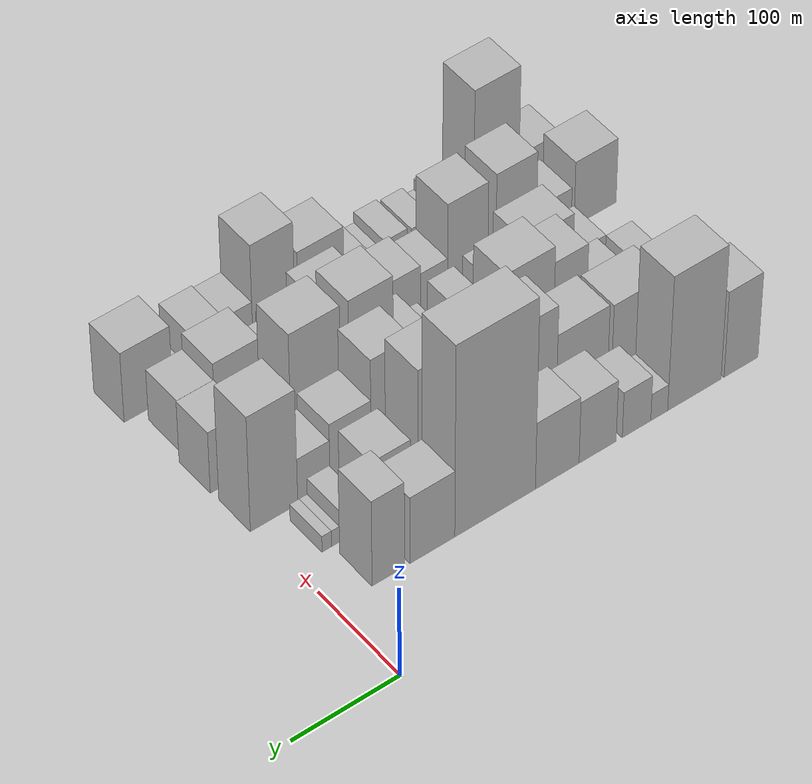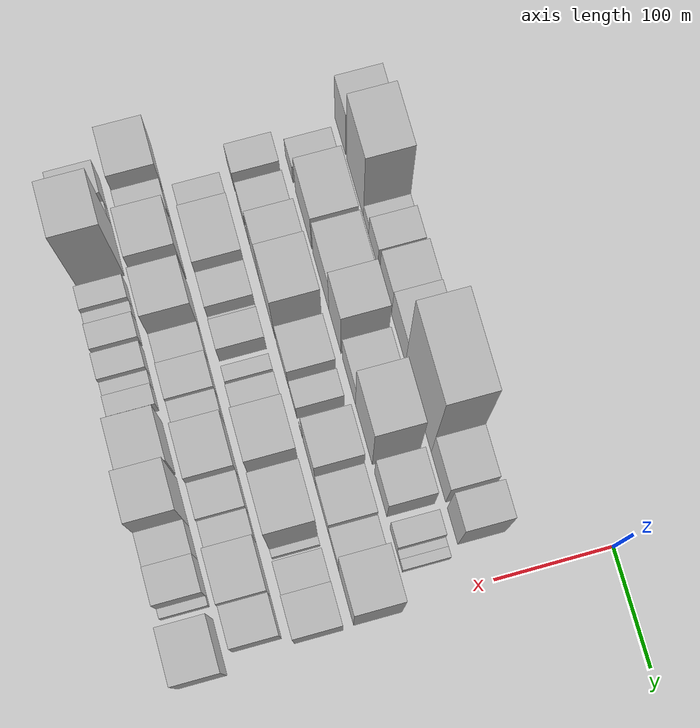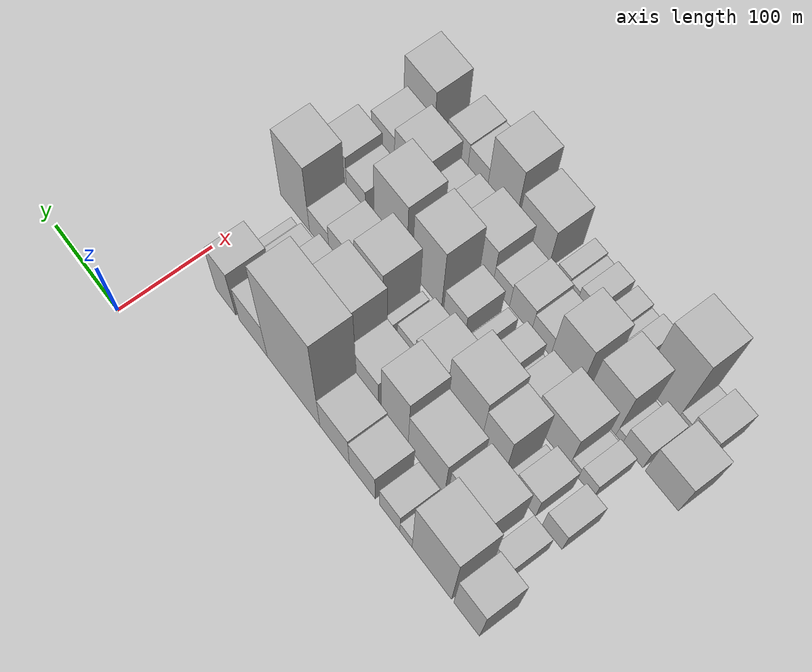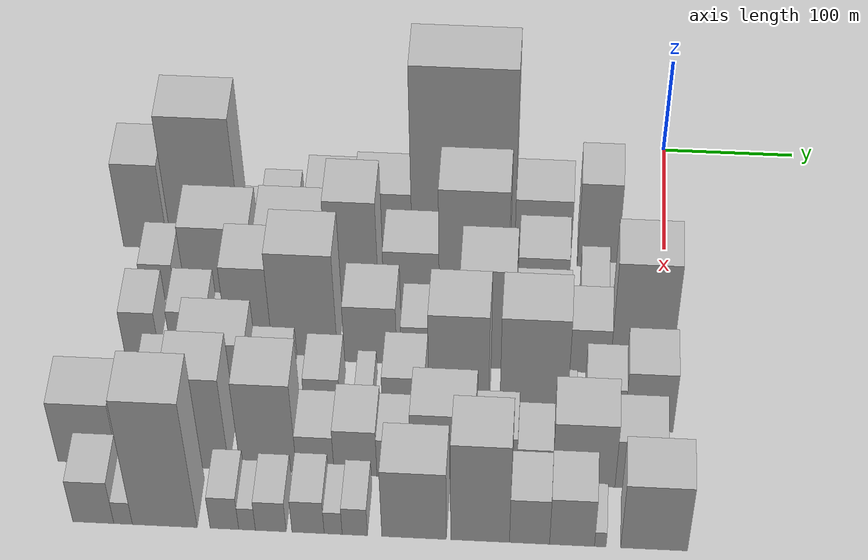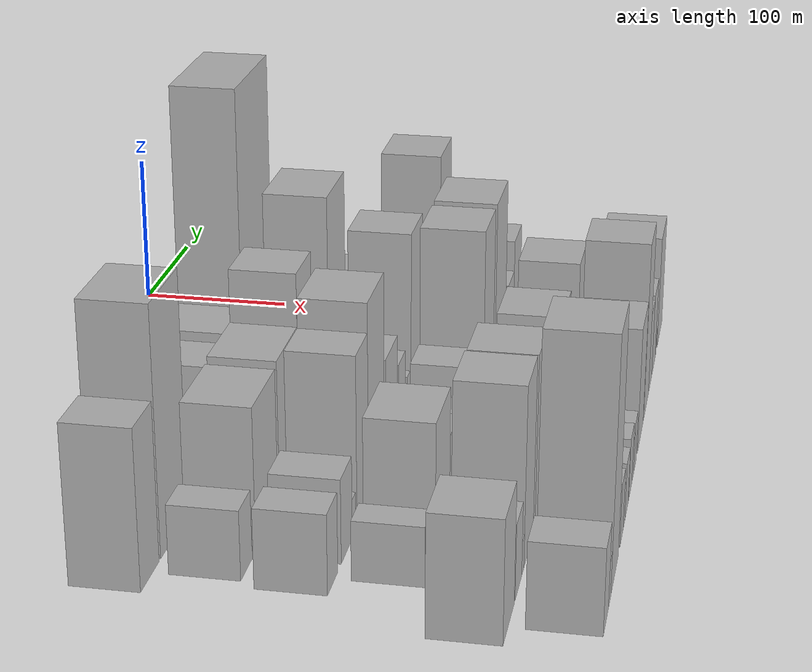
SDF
<sdf version="1.6">
 <world name="default">
  <model name="building_12">
   <static>1</static>
   <pose>100.0000 -392.8973 0 0.000000 0.000000 0.000000</pose>
   <link name="link">
    <pose>0 0 48.00 0 0 0</pose>
    <collision name="collision"><geometry><box><size>40.0000 34.0896 96.0000</size></box></geometry></collision>
    <visual name="visual">
     <cast_shadows>0</cast_shadows>
     <geometry><box><size>40.0000 34.0896 96.0000</size></box></geometry>
     <material>
      <script>
       <uri>model://HANNAS_wall/materials/scripts</uri>
       <uri>model://HANNAS_wall/materials/textures</uri>
       <name>vrc/HANNAS_wall</name>
      </script>
     </material>
    </visual>
   </link>
  </model>
  <model name="building_13">
   <static>1</static>
   <pose>100.0000 -346.2073 0 0.000000 0.000000 0.000000</pose>
   <link name="link">
    <pose>0 0 75.00 0 0 0</pose>
    <collision name="collision"><geometry><box><size>40.0000 53.2903 150.0000</size></box></geometry></collision>
    <visual name="visual">
     <cast_shadows>0</cast_shadows>
     <geometry><box><size>40.0000 53.2903 150.0000</size></box></geometry>
     <material>
      <script>
       <uri>model://HANNAS_wall/materials/scripts</uri>
       <uri>model://HANNAS_wall/materials/textures</uri>
       <name>vrc/HANNAS_wall</name>
      </script>
     </material>
    </visual>
   </link>
  </model>
  <model name="building_14">
   <static>1</static>
   <pose>100.0000 -311.1829 0 0.000000 0.000000 0.000000</pose>
   <link name="link">
    <pose>0 0 15.00 0 0 0</pose>
    <collision name="collision"><geometry><box><size>40.0000 16.7586 30.0000</size></box></geometry></collision>
    <visual name="visual">
     <cast_shadows>0</cast_shadows>
     <geometry><box><size>40.0000 16.7586 30.0000</size></box></geometry>
     <material>
      <script>
       <uri>model://HANNAS_wall/materials/scripts</uri>
       <uri>model://HANNAS_wall/materials/textures</uri>
       <name>vrc/HANNAS_wall</name>
      </script>
     </material>
    </visual>
   </link>
  </model>
  <model name="building_15">
   <static>1</static>
   <pose>100.0000 -288.7752 0 0.000000 0.000000 0.000000</pose>
   <link name="link">
    <pose>0 0 25.50 0 0 0</pose>
    <collision name="collision"><geometry><box><size>40.0000 28.0567 51.0000</size></box></geometry></collision>
    <visual name="visual">
     <cast_shadows>0</cast_shadows>
     <geometry><box><size>40.0000 28.0567 51.0000</size></box></geometry>
     <material>
      <script>
       <uri>model://HANNAS_wall/materials/scripts</uri>
       <uri>model://HANNAS_wall/materials/textures</uri>
       <name>vrc/HANNAS_wall</name>
      </script>
     </material>
    </visual>
   </link>
  </model>
  <model name="building_16">
   <static>1</static>
   <pose>100.0000 -250.5899 0 0.000000 0.000000 0.000000</pose>
   <link name="link">
    <pose>0 0 34.50 0 0 0</pose>
    <collision name="collision"><geometry><box><size>40.0000 36.3140 69.0000</size></box></geometry></collision>
    <visual name="visual">
     <cast_shadows>0</cast_shadows>
     <geometry><box><size>40.0000 36.3140 69.0000</size></box></geometry>
     <material>
      <script>
       <uri>model://HANNAS_wall/materials/scripts</uri>
       <uri>model://HANNAS_wall/materials/textures</uri>
       <name>vrc/HANNAS_wall</name>
      </script>
     </material>
    </visual>
   </link>
  </model>
  <model name="building_17">
   <static>1</static>
   <pose>100.0000 -211.2901 0 0.000000 0.000000 0.000000</pose>
   <link name="link">
    <pose>0 0 37.50 0 0 0</pose>
    <collision name="collision"><geometry><box><size>40.0000 42.2855 75.0000</size></box></geometry></collision>
    <visual name="visual">
     <cast_shadows>0</cast_shadows>
     <geometry><box><size>40.0000 42.2855 75.0000</size></box></geometry>
     <material>
      <script>
       <uri>model://HANNAS_wall/materials/scripts</uri>
       <uri>model://HANNAS_wall/materials/textures</uri>
       <name>vrc/HANNAS_wall</name>
      </script>
     </material>
    </visual>
   </link>
  </model>
  <model name="building_18">
   <static>1</static>
   <pose>100.0000 -151.5598 0 0.000000 0.000000 0.000000</pose>
   <link name="link">
    <pose>0 0 106.50 0 0 0</pose>
    <collision name="collision"><geometry><box><size>40.0000 77.1752 213.0000</size></box></geometry></collision>
    <visual name="visual">
     <cast_shadows>0</cast_shadows>
     <geometry><box><size>40.0000 77.1752 213.0000</size></box></geometry>
     <material>
      <script>
       <uri>model://HANNAS_wall/materials/scripts</uri>
       <uri>model://HANNAS_wall/materials/textures</uri>
       <name>vrc/HANNAS_wall</name>
      </script>
     </material>
    </visual>
   </link>
  </model>
  <model name="building_19">
   <static>1</static>
   <pose>100.0000 -91.7813 0 0.000000 0.000000 0.000000</pose>
   <link name="link">
    <pose>0 0 37.50 0 0 0</pose>
    <collision name="collision"><geometry><box><size>40.0000 42.3817 75.0000</size></box></geometry></collision>
    <visual name="visual">
     <cast_shadows>0</cast_shadows>
     <geometry><box><size>40.0000 42.3817 75.0000</size></box></geometry>
     <material>
      <script>
       <uri>model://HANNAS_wall/materials/scripts</uri>
       <uri>model://HANNAS_wall/materials/textures</uri>
       <name>vrc/HANNAS_wall</name>
      </script>
     </material>
    </visual>
   </link>
  </model>
  <model name="building_20">
   <static>1</static>
   <pose>100.0000 -50.3472 0 0.000000 0.000000 0.000000</pose>
   <link name="link">
    <pose>0 0 48.00 0 0 0</pose>
    <collision name="collision"><geometry><box><size>40.0000 30.4866 96.0000</size></box></geometry></collision>
    <visual name="visual">
     <cast_shadows>0</cast_shadows>
     <geometry><box><size>40.0000 30.4866 96.0000</size></box></geometry>
     <material>
      <script>
       <uri>model://HANNAS_wall/materials/scripts</uri>
       <uri>model://HANNAS_wall/materials/textures</uri>
       <name>vrc/HANNAS_wall</name>
      </script>
     </material>
    </visual>
   </link>
  </model>
  <model name="building_56">
   <static>1</static>
   <pose>149.0000 -376.0090 0 0.000000 0.000000 0.000000</pose>
   <link name="link">
    <pose>0 0 21.00 0 0 0</pose>
    <collision name="collision"><geometry><box><size>40.0000 24.7349 42.0000</size></box></geometry></collision>
    <visual name="visual">
     <cast_shadows>0</cast_shadows>
     <geometry><box><size>40.0000 24.7349 42.0000</size></box></geometry>
     <material>
      <script>
       <uri>model://HANNAS_wall/materials/scripts</uri>
       <uri>model://HANNAS_wall/materials/textures</uri>
       <name>vrc/HANNAS_wall</name>
      </script>
     </material>
    </visual>
   </link>
  </model>
  <model name="building_57">
   <static>1</static>
   <pose>149.0000 -329.7334 0 0.000000 0.000000 0.000000</pose>
   <link name="link">
    <pose>0 0 43.50 0 0 0</pose>
    <collision name="collision"><geometry><box><size>40.0000 51.8163 87.0000</size></box></geometry></collision>
    <visual name="visual">
     <cast_shadows>0</cast_shadows>
     <geometry><box><size>40.0000 51.8163 87.0000</size></box></geometry>
     <material>
      <script>
       <uri>model://HANNAS_wall/materials/scripts</uri>
       <uri>model://HANNAS_wall/materials/textures</uri>
       <name>vrc/HANNAS_wall</name>
      </script>
     </material>
    </visual>
   </link>
  </model>
  <model name="building_58">
   <static>1</static>
   <pose>149.0000 -274.5626 0 0.000000 0.000000 0.000000</pose>
   <link name="link">
    <pose>0 0 45.00 0 0 0</pose>
    <collision name="collision"><geometry><box><size>40.0000 50.5255 90.0000</size></box></geometry></collision>
    <visual name="visual">
     <cast_shadows>0</cast_shadows>
     <geometry><box><size>40.0000 50.5255 90.0000</size></box></geometry>
     <material>
      <script>
       <uri>model://HANNAS_wall/materials/scripts</uri>
       <uri>model://HANNAS_wall/materials/textures</uri>
       <name>vrc/HANNAS_wall</name>
      </script>
     </material>
    </visual>
   </link>
  </model>
  <model name="building_59">
   <static>1</static>
   <pose>149.0000 -230.4755 0 0.000000 0.000000 0.000000</pose>
   <link name="link">
    <pose>0 0 61.50 0 0 0</pose>
    <collision name="collision"><geometry><box><size>40.0000 37.6487 123.0000</size></box></geometry></collision>
    <visual name="visual">
     <cast_shadows>0</cast_shadows>
     <geometry><box><size>40.0000 37.6487 123.0000</size></box></geometry>
     <material>
      <script>
       <uri>model://HANNAS_wall/materials/scripts</uri>
       <uri>model://HANNAS_wall/materials/textures</uri>
       <name>vrc/HANNAS_wall</name>
      </script>
     </material>
    </visual>
   </link>
  </model>
  <model name="building_60">
   <static>1</static>
   <pose>149.0000 -187.1930 0 0.000000 0.000000 0.000000</pose>
   <link name="link">
    <pose>0 0 34.50 0 0 0</pose>
    <collision name="collision"><geometry><box><size>40.0000 40.9164 69.0000</size></box></geometry></collision>
    <visual name="visual">
     <cast_shadows>0</cast_shadows>
     <geometry><box><size>40.0000 40.9164 69.0000</size></box></geometry>
     <material>
      <script>
       <uri>model://HANNAS_wall/materials/scripts</uri>
       <uri>model://HANNAS_wall/materials/textures</uri>
       <name>vrc/HANNAS_wall</name>
      </script>
     </material>
    </visual>
   </link>
  </model>
  <model name="building_61">
   <static>1</static>
   <pose>149.0000 -141.3337 0 0.000000 0.000000 0.000000</pose>
   <link name="link">
    <pose>0 0 70.50 0 0 0</pose>
    <collision name="collision"><geometry><box><size>40.0000 50.8022 141.0000</size></box></geometry></collision>
    <visual name="visual">
     <cast_shadows>0</cast_shadows>
     <geometry><box><size>40.0000 50.8022 141.0000</size></box></geometry>
     <material>
      <script>
       <uri>model://HANNAS_wall/materials/scripts</uri>
       <uri>model://HANNAS_wall/materials/textures</uri>
       <name>vrc/HANNAS_wall</name>
      </script>
     </material>
    </visual>
   </link>
  </model>
  <model name="building_62">
   <static>1</static>
   <pose>149.0000 -90.3710 0 0.000000 0.000000 0.000000</pose>
   <link name="link">
    <pose>0 0 34.50 0 0 0</pose>
    <collision name="collision"><geometry><box><size>40.0000 37.1232 69.0000</size></box></geometry></collision>
    <visual name="visual">
     <cast_shadows>0</cast_shadows>
     <geometry><box><size>40.0000 37.1232 69.0000</size></box></geometry>
     <material>
      <script>
       <uri>model://HANNAS_wall/materials/scripts</uri>
       <uri>model://HANNAS_wall/materials/textures</uri>
       <name>vrc/HANNAS_wall</name>
      </script>
     </material>
    </visual>
   </link>
  </model>
  <model name="building_63">
   <static>1</static>
   <pose>149.0000 -52.3961 0 0.000000 0.000000 0.000000</pose>
   <link name="link">
    <pose>0 0 18.00 0 0 0</pose>
    <collision name="collision"><geometry><box><size>40.0000 20.8265 36.0000</size></box></geometry></collision>
    <visual name="visual">
     <cast_shadows>0</cast_shadows>
     <geometry><box><size>40.0000 20.8265 36.0000</size></box></geometry>
     <material>
      <script>
       <uri>model://HANNAS_wall/materials/scripts</uri>
       <uri>model://HANNAS_wall/materials/textures</uri>
       <name>vrc/HANNAS_wall</name>
      </script>
     </material>
    </visual>
   </link>
  </model>
  <model name="building_64">
   <static>1</static>
   <pose>149.0000 -38.1881 0 0.000000 0.000000 0.000000</pose>
   <link name="link">
    <pose>0 0 9.00 0 0 0</pose>
    <collision name="collision"><geometry><box><size>40.0000 7.5896 18.0000</size></box></geometry></collision>
    <visual name="visual">
     <cast_shadows>0</cast_shadows>
     <geometry><box><size>40.0000 7.5896 18.0000</size></box></geometry>
     <material>
      <script>
       <uri>model://HANNAS_wall/materials/scripts</uri>
       <uri>model://HANNAS_wall/materials/textures</uri>
       <name>vrc/HANNAS_wall</name>
      </script>
     </material>
    </visual>
   </link>
  </model>
  <model name="building_65">
   <static>1</static>
   <pose>149.0000 -29.9354 0 0.000000 0.000000 0.000000</pose>
   <link name="link">
    <pose>0 0 9.00 0 0 0</pose>
    <collision name="collision"><geometry><box><size>40.0000 8.9158 18.0000</size></box></geometry></collision>
    <visual name="visual">
     <cast_shadows>0</cast_shadows>
     <geometry><box><size>40.0000 8.9158 18.0000</size></box></geometry>
     <material>
      <script>
       <uri>model://HANNAS_wall/materials/scripts</uri>
       <uri>model://HANNAS_wall/materials/textures</uri>
       <name>vrc/HANNAS_wall</name>
      </script>
     </material>
    </visual>
   </link>
  </model>
  <model name="building_104">
   <static>1</static>
   <pose>198.0000 -382.3272 0 0.000000 0.000000 0.000000</pose>
   <link name="link">
    <pose>0 0 24.00 0 0 0</pose>
    <collision name="collision"><geometry><box><size>40.0000 25.7984 48.0000</size></box></geometry></collision>
    <visual name="visual">
     <cast_shadows>0</cast_shadows>
     <geometry><box><size>40.0000 25.7984 48.0000</size></box></geometry>
     <material>
      <script>
       <uri>model://HANNAS_wall/materials/scripts</uri>
       <uri>model://HANNAS_wall/materials/textures</uri>
       <name>vrc/HANNAS_wall</name>
      </script>
     </material>
    </visual>
   </link>
  </model>
  <model name="building_105">
   <static>1</static>
   <pose>198.0000 -345.8460 0 0.000000 0.000000 0.000000</pose>
   <link name="link">
    <pose>0 0 25.50 0 0 0</pose>
    <collision name="collision"><geometry><box><size>40.0000 29.1640 51.0000</size></box></geometry></collision>
    <visual name="visual">
     <cast_shadows>0</cast_shadows>
     <geometry><box><size>40.0000 29.1640 51.0000</size></box></geometry>
     <material>
      <script>
       <uri>model://HANNAS_wall/materials/scripts</uri>
       <uri>model://HANNAS_wall/materials/textures</uri>
       <name>vrc/HANNAS_wall</name>
      </script>
     </material>
    </visual>
   </link>
  </model>
  <model name="building_106">
   <static>1</static>
   <pose>198.0000 -326.2091 0 0.000000 0.000000 0.000000</pose>
   <link name="link">
    <pose>0 0 12.00 0 0 0</pose>
    <collision name="collision"><geometry><box><size>40.0000 10.1097 24.0000</size></box></geometry></collision>
    <visual name="visual">
     <cast_shadows>0</cast_shadows>
     <geometry><box><size>40.0000 10.1097 24.0000</size></box></geometry>
     <material>
      <script>
       <uri>model://HANNAS_wall/materials/scripts</uri>
       <uri>model://HANNAS_wall/materials/textures</uri>
       <name>vrc/HANNAS_wall</name>
      </script>
     </material>
    </visual>
   </link>
  </model>
  <model name="building_107">
   <static>1</static>
   <pose>198.0000 -301.8444 0 0.000000 0.000000 0.000000</pose>
   <link name="link">
    <pose>0 0 52.50 0 0 0</pose>
    <collision name="collision"><geometry><box><size>40.0000 32.6197 105.0000</size></box></geometry></collision>
    <visual name="visual">
     <cast_shadows>0</cast_shadows>
     <geometry><box><size>40.0000 32.6197 105.0000</size></box></geometry>
     <material>
      <script>
       <uri>model://HANNAS_wall/materials/scripts</uri>
       <uri>model://HANNAS_wall/materials/textures</uri>
       <name>vrc/HANNAS_wall</name>
      </script>
     </material>
    </visual>
   </link>
  </model>
  <model name="building_108">
   <static>1</static>
   <pose>198.0000 -261.7759 0 0.000000 0.000000 0.000000</pose>
   <link name="link">
    <pose>0 0 61.50 0 0 0</pose>
    <collision name="collision"><geometry><box><size>40.0000 47.5175 123.0000</size></box></geometry></collision>
    <visual name="visual">
     <cast_shadows>0</cast_shadows>
     <geometry><box><size>40.0000 47.5175 123.0000</size></box></geometry>
     <material>
      <script>
       <uri>model://HANNAS_wall/materials/scripts</uri>
       <uri>model://HANNAS_wall/materials/textures</uri>
       <name>vrc/HANNAS_wall</name>
      </script>
     </material>
    </visual>
   </link>
  </model>
  <model name="building_109">
   <static>1</static>
   <pose>198.0000 -213.8869 0 0.000000 0.000000 0.000000</pose>
   <link name="link">
    <pose>0 0 33.00 0 0 0</pose>
    <collision name="collision"><geometry><box><size>40.0000 38.2605 66.0000</size></box></geometry></collision>
    <visual name="visual">
     <cast_shadows>0</cast_shadows>
     <geometry><box><size>40.0000 38.2605 66.0000</size></box></geometry>
     <material>
      <script>
       <uri>model://HANNAS_wall/materials/scripts</uri>
       <uri>model://HANNAS_wall/materials/textures</uri>
       <name>vrc/HANNAS_wall</name>
      </script>
     </material>
    </visual>
   </link>
  </model>
  <model name="building_110">
   <static>1</static>
   <pose>198.0000 -180.2762 0 0.000000 0.000000 0.000000</pose>
   <link name="link">
    <pose>0 0 22.50 0 0 0</pose>
    <collision name="collision"><geometry><box><size>40.0000 22.9608 45.0000</size></box></geometry></collision>
    <visual name="visual">
     <cast_shadows>0</cast_shadows>
     <geometry><box><size>40.0000 22.9608 45.0000</size></box></geometry>
     <material>
      <script>
       <uri>model://HANNAS_wall/materials/scripts</uri>
       <uri>model://HANNAS_wall/materials/textures</uri>
       <name>vrc/HANNAS_wall</name>
      </script>
     </material>
    </visual>
   </link>
  </model>
  <model name="building_111">
   <static>1</static>
   <pose>198.0000 -156.7101 0 0.000000 0.000000 0.000000</pose>
   <link name="link">
    <pose>0 0 12.00 0 0 0</pose>
    <collision name="collision"><geometry><box><size>40.0000 10.1714 24.0000</size></box></geometry></collision>
    <visual name="visual">
     <cast_shadows>0</cast_shadows>
     <geometry><box><size>40.0000 10.1714 24.0000</size></box></geometry>
     <material>
      <script>
       <uri>model://HANNAS_wall/materials/scripts</uri>
       <uri>model://HANNAS_wall/materials/textures</uri>
       <name>vrc/HANNAS_wall</name>
      </script>
     </material>
    </visual>
   </link>
  </model>
  <model name="building_112">
   <static>1</static>
   <pose>198.0000 -128.9068 0 0.000000 0.000000 0.000000</pose>
   <link name="link">
    <pose>0 0 57.00 0 0 0</pose>
    <collision name="collision"><geometry><box><size>40.0000 39.4353 114.0000</size></box></geometry></collision>
    <visual name="visual">
     <cast_shadows>0</cast_shadows>
     <geometry><box><size>40.0000 39.4353 114.0000</size></box></geometry>
     <material>
      <script>
       <uri>model://HANNAS_wall/materials/scripts</uri>
       <uri>model://HANNAS_wall/materials/textures</uri>
       <name>vrc/HANNAS_wall</name>
      </script>
     </material>
    </visual>
   </link>
  </model>
  <model name="building_113">
   <static>1</static>
   <pose>198.0000 -89.5917 0 0.000000 0.000000 0.000000</pose>
   <link name="link">
    <pose>0 0 34.50 0 0 0</pose>
    <collision name="collision"><geometry><box><size>40.0000 39.1950 69.0000</size></box></geometry></collision>
    <visual name="visual">
     <cast_shadows>0</cast_shadows>
     <geometry><box><size>40.0000 39.1950 69.0000</size></box></geometry>
     <material>
      <script>
       <uri>model://HANNAS_wall/materials/scripts</uri>
       <uri>model://HANNAS_wall/materials/textures</uri>
       <name>vrc/HANNAS_wall</name>
      </script>
     </material>
    </visual>
   </link>
  </model>
  <model name="building_114">
   <static>1</static>
   <pose>198.0000 -54.7384 0 0.000000 0.000000 0.000000</pose>
   <link name="link">
    <pose>0 0 25.50 0 0 0</pose>
    <collision name="collision"><geometry><box><size>40.0000 30.5116 51.0000</size></box></geometry></collision>
    <visual name="visual">
     <cast_shadows>0</cast_shadows>
     <geometry><box><size>40.0000 30.5116 51.0000</size></box></geometry>
     <material>
      <script>
       <uri>model://HANNAS_wall/materials/scripts</uri>
       <uri>model://HANNAS_wall/materials/textures</uri>
       <name>vrc/HANNAS_wall</name>
      </script>
     </material>
    </visual>
   </link>
  </model>
  <model name="building_115">
   <static>1</static>
   <pose>198.0000 -17.2766 0 0.000000 0.000000 0.000000</pose>
   <link name="link">
    <pose>0 0 64.50 0 0 0</pose>
    <collision name="collision"><geometry><box><size>40.0000 44.4120 129.0000</size></box></geometry></collision>
    <visual name="visual">
     <cast_shadows>0</cast_shadows>
     <geometry><box><size>40.0000 44.4120 129.0000</size></box></geometry>
     <material>
      <script>
       <uri>model://HANNAS_wall/materials/scripts</uri>
       <uri>model://HANNAS_wall/materials/textures</uri>
       <name>vrc/HANNAS_wall</name>
      </script>
     </material>
    </visual>
   </link>
  </model>
  <model name="building_149">
   <static>1</static>
   <pose>247.0000 -366.7356 0 0.000000 0.000000 0.000000</pose>
   <link name="link">
    <pose>0 0 18.00 0 0 0</pose>
    <collision name="collision"><geometry><box><size>40.0000 20.9279 36.0000</size></box></geometry></collision>
    <visual name="visual">
     <cast_shadows>0</cast_shadows>
     <geometry><box><size>40.0000 20.9279 36.0000</size></box></geometry>
     <material>
      <script>
       <uri>model://HANNAS_wall/materials/scripts</uri>
       <uri>model://HANNAS_wall/materials/textures</uri>
       <name>vrc/HANNAS_wall</name>
      </script>
     </material>
    </visual>
   </link>
  </model>
  <model name="building_150">
   <static>1</static>
   <pose>247.0000 -350.3217 0 0.000000 0.000000 0.000000</pose>
   <link name="link">
    <pose>0 0 13.50 0 0 0</pose>
    <collision name="collision"><geometry><box><size>40.0000 11.8999 27.0000</size></box></geometry></collision>
    <visual name="visual">
     <cast_shadows>0</cast_shadows>
     <geometry><box><size>40.0000 11.8999 27.0000</size></box></geometry>
     <material>
      <script>
       <uri>model://HANNAS_wall/materials/scripts</uri>
       <uri>model://HANNAS_wall/materials/textures</uri>
       <name>vrc/HANNAS_wall</name>
      </script>
     </material>
    </visual>
   </link>
  </model>
  <model name="building_151">
   <static>1</static>
   <pose>247.0000 -320.2752 0 0.000000 0.000000 0.000000</pose>
   <link name="link">
    <pose>0 0 40.50 0 0 0</pose>
    <collision name="collision"><geometry><box><size>40.0000 48.1930 81.0000</size></box></geometry></collision>
    <visual name="visual">
     <cast_shadows>0</cast_shadows>
     <geometry><box><size>40.0000 48.1930 81.0000</size></box></geometry>
     <material>
      <script>
       <uri>model://HANNAS_wall/materials/scripts</uri>
       <uri>model://HANNAS_wall/materials/textures</uri>
       <name>vrc/HANNAS_wall</name>
      </script>
     </material>
    </visual>
   </link>
  </model>
  <model name="building_152">
   <static>1</static>
   <pose>247.0000 -281.2591 0 0.000000 0.000000 0.000000</pose>
   <link name="link">
    <pose>0 0 25.50 0 0 0</pose>
    <collision name="collision"><geometry><box><size>40.0000 29.8394 51.0000</size></box></geometry></collision>
    <visual name="visual">
     <cast_shadows>0</cast_shadows>
     <geometry><box><size>40.0000 29.8394 51.0000</size></box></geometry>
     <material>
      <script>
       <uri>model://HANNAS_wall/materials/scripts</uri>
       <uri>model://HANNAS_wall/materials/textures</uri>
       <name>vrc/HANNAS_wall</name>
      </script>
     </material>
    </visual>
   </link>
  </model>
  <model name="building_153">
   <static>1</static>
   <pose>247.0000 -261.9431 0 0.000000 0.000000 0.000000</pose>
   <link name="link">
    <pose>0 0 9.00 0 0 0</pose>
    <collision name="collision"><geometry><box><size>40.0000 8.7926 18.0000</size></box></geometry></collision>
    <visual name="visual">
     <cast_shadows>0</cast_shadows>
     <geometry><box><size>40.0000 8.7926 18.0000</size></box></geometry>
     <material>
      <script>
       <uri>model://HANNAS_wall/materials/scripts</uri>
       <uri>model://HANNAS_wall/materials/textures</uri>
       <name>vrc/HANNAS_wall</name>
      </script>
     </material>
    </visual>
   </link>
  </model>
  <model name="building_154">
   <static>1</static>
   <pose>247.0000 -244.6733 0 0.000000 0.000000 0.000000</pose>
   <link name="link">
    <pose>0 0 22.50 0 0 0</pose>
    <collision name="collision"><geometry><box><size>40.0000 25.7469 45.0000</size></box></geometry></collision>
    <visual name="visual">
     <cast_shadows>0</cast_shadows>
     <geometry><box><size>40.0000 25.7469 45.0000</size></box></geometry>
     <material>
      <script>
       <uri>model://HANNAS_wall/materials/scripts</uri>
       <uri>model://HANNAS_wall/materials/textures</uri>
       <name>vrc/HANNAS_wall</name>
      </script>
     </material>
    </visual>
   </link>
  </model>
  <model name="building_155">
   <static>1</static>
   <pose>247.0000 -215.1373 0 0.000000 0.000000 0.000000</pose>
   <link name="link">
    <pose>0 0 13.50 0 0 0</pose>
    <collision name="collision"><geometry><box><size>40.0000 13.3252 27.0000</size></box></geometry></collision>
    <visual name="visual">
     <cast_shadows>0</cast_shadows>
     <geometry><box><size>40.0000 13.3252 27.0000</size></box></geometry>
     <material>
      <script>
       <uri>model://HANNAS_wall/materials/scripts</uri>
       <uri>model://HANNAS_wall/materials/textures</uri>
       <name>vrc/HANNAS_wall</name>
      </script>
     </material>
    </visual>
   </link>
  </model>
  <model name="building_156">
   <static>1</static>
   <pose>247.0000 -186.2793 0 0.000000 0.000000 0.000000</pose>
   <link name="link">
    <pose>0 0 25.50 0 0 0</pose>
    <collision name="collision"><geometry><box><size>40.0000 30.3909 51.0000</size></box></geometry></collision>
    <visual name="visual">
     <cast_shadows>0</cast_shadows>
     <geometry><box><size>40.0000 30.3909 51.0000</size></box></geometry>
     <material>
      <script>
       <uri>model://HANNAS_wall/materials/scripts</uri>
       <uri>model://HANNAS_wall/materials/textures</uri>
       <name>vrc/HANNAS_wall</name>
      </script>
     </material>
    </visual>
   </link>
  </model>
  <model name="building_157">
   <static>1</static>
   <pose>247.0000 -146.9115 0 0.000000 0.000000 0.000000</pose>
   <link name="link">
    <pose>0 0 63.00 0 0 0</pose>
    <collision name="collision"><geometry><box><size>40.0000 42.3447 126.0000</size></box></geometry></collision>
    <visual name="visual">
     <cast_shadows>0</cast_shadows>
     <geometry><box><size>40.0000 42.3447 126.0000</size></box></geometry>
     <material>
      <script>
       <uri>model://HANNAS_wall/materials/scripts</uri>
       <uri>model://HANNAS_wall/materials/textures</uri>
       <name>vrc/HANNAS_wall</name>
      </script>
     </material>
    </visual>
   </link>
  </model>
  <model name="building_158">
   <static>1</static>
   <pose>247.0000 -93.8946 0 0.000000 0.000000 0.000000</pose>
   <link name="link">
    <pose>0 0 63.00 0 0 0</pose>
    <collision name="collision"><geometry><box><size>40.0000 47.6892 126.0000</size></box></geometry></collision>
    <visual name="visual">
     <cast_shadows>0</cast_shadows>
     <geometry><box><size>40.0000 47.6892 126.0000</size></box></geometry>
     <material>
      <script>
       <uri>model://HANNAS_wall/materials/scripts</uri>
       <uri>model://HANNAS_wall/materials/textures</uri>
       <name>vrc/HANNAS_wall</name>
      </script>
     </material>
    </visual>
   </link>
  </model>
  <model name="building_159">
   <static>1</static>
   <pose>247.0000 -66.5783 0 0.000000 0.000000 0.000000</pose>
   <link name="link">
    <pose>0 0 7.50 0 0 0</pose>
    <collision name="collision"><geometry><box><size>40.0000 6.9434 15.0000</size></box></geometry></collision>
    <visual name="visual">
     <cast_shadows>0</cast_shadows>
     <geometry><box><size>40.0000 6.9434 15.0000</size></box></geometry>
     <material>
      <script>
       <uri>model://HANNAS_wall/materials/scripts</uri>
       <uri>model://HANNAS_wall/materials/textures</uri>
       <name>vrc/HANNAS_wall</name>
      </script>
     </material>
    </visual>
   </link>
  </model>
  <model name="building_160">
   <static>1</static>
   <pose>247.0000 -42.8499 0 0.000000 0.000000 0.000000</pose>
   <link name="link">
    <pose>0 0 24.00 0 0 0</pose>
    <collision name="collision"><geometry><box><size>40.0000 28.5135 48.0000</size></box></geometry></collision>
    <visual name="visual">
     <cast_shadows>0</cast_shadows>
     <geometry><box><size>40.0000 28.5135 48.0000</size></box></geometry>
     <material>
      <script>
       <uri>model://HANNAS_wall/materials/scripts</uri>
       <uri>model://HANNAS_wall/materials/textures</uri>
       <name>vrc/HANNAS_wall</name>
      </script>
     </material>
    </visual>
   </link>
  </model>
  <model name="building_161">
   <static>1</static>
   <pose>247.0000 -11.1434 0 0.000000 0.000000 0.000000</pose>
   <link name="link">
    <pose>0 0 34.50 0 0 0</pose>
    <collision name="collision"><geometry><box><size>40.0000 34.8994 69.0000</size></box></geometry></collision>
    <visual name="visual">
     <cast_shadows>0</cast_shadows>
     <geometry><box><size>40.0000 34.8994 69.0000</size></box></geometry>
     <material>
      <script>
       <uri>model://HANNAS_wall/materials/scripts</uri>
       <uri>model://HANNAS_wall/materials/textures</uri>
       <name>vrc/HANNAS_wall</name>
      </script>
     </material>
    </visual>
   </link>
  </model>
  <model name="building_201">
   <static>1</static>
   <pose>296.0000 -406.8649 0 0.000000 0.000000 0.000000</pose>
   <link name="link">
    <pose>0 0 36.00 0 0 0</pose>
    <collision name="collision"><geometry><box><size>40.0000 42.7651 72.0000</size></box></geometry></collision>
    <visual name="visual">
     <cast_shadows>0</cast_shadows>
     <geometry><box><size>40.0000 42.7651 72.0000</size></box></geometry>
     <material>
      <script>
       <uri>model://HANNAS_wall/materials/scripts</uri>
       <uri>model://HANNAS_wall/materials/textures</uri>
       <name>vrc/HANNAS_wall</name>
      </script>
     </material>
    </visual>
   </link>
  </model>
  <model name="building_202">
   <static>1</static>
   <pose>296.0000 -369.1136 0 0.000000 0.000000 0.000000</pose>
   <link name="link">
    <pose>0 0 22.50 0 0 0</pose>
    <collision name="collision"><geometry><box><size>40.0000 26.7375 45.0000</size></box></geometry></collision>
    <visual name="visual">
     <cast_shadows>0</cast_shadows>
     <geometry><box><size>40.0000 26.7375 45.0000</size></box></geometry>
     <material>
      <script>
       <uri>model://HANNAS_wall/materials/scripts</uri>
       <uri>model://HANNAS_wall/materials/textures</uri>
       <name>vrc/HANNAS_wall</name>
      </script>
     </material>
    </visual>
   </link>
  </model>
  <model name="building_203">
   <static>1</static>
   <pose>296.0000 -351.3477 0 0.000000 0.000000 0.000000</pose>
   <link name="link">
    <pose>0 0 10.50 0 0 0</pose>
    <collision name="collision"><geometry><box><size>40.0000 8.7945 21.0000</size></box></geometry></collision>
    <visual name="visual">
     <cast_shadows>0</cast_shadows>
     <geometry><box><size>40.0000 8.7945 21.0000</size></box></geometry>
     <material>
      <script>
       <uri>model://HANNAS_wall/materials/scripts</uri>
       <uri>model://HANNAS_wall/materials/textures</uri>
       <name>vrc/HANNAS_wall</name>
      </script>
     </material>
    </visual>
   </link>
  </model>
  <model name="building_204">
   <static>1</static>
   <pose>296.0000 -326.7406 0 0.000000 0.000000 0.000000</pose>
   <link name="link">
    <pose>0 0 54.00 0 0 0</pose>
    <collision name="collision"><geometry><box><size>40.0000 40.4198 108.0000</size></box></geometry></collision>
    <visual name="visual">
     <cast_shadows>0</cast_shadows>
     <geometry><box><size>40.0000 40.4198 108.0000</size></box></geometry>
     <material>
      <script>
       <uri>model://HANNAS_wall/materials/scripts</uri>
       <uri>model://HANNAS_wall/materials/textures</uri>
       <name>vrc/HANNAS_wall</name>
      </script>
     </material>
    </visual>
   </link>
  </model>
  <model name="building_205">
   <static>1</static>
   <pose>296.0000 -278.6136 0 0.000000 0.000000 0.000000</pose>
   <link name="link">
    <pose>0 0 52.50 0 0 0</pose>
    <collision name="collision"><geometry><box><size>40.0000 39.8341 105.0000</size></box></geometry></collision>
    <visual name="visual">
     <cast_shadows>0</cast_shadows>
     <geometry><box><size>40.0000 39.8341 105.0000</size></box></geometry>
     <material>
      <script>
       <uri>model://HANNAS_wall/materials/scripts</uri>
       <uri>model://HANNAS_wall/materials/textures</uri>
       <name>vrc/HANNAS_wall</name>
      </script>
     </material>
    </visual>
   </link>
  </model>
  <model name="building_206">
   <static>1</static>
   <pose>296.0000 -245.4065 0 0.000000 0.000000 0.000000</pose>
   <link name="link">
    <pose>0 0 22.50 0 0 0</pose>
    <collision name="collision"><geometry><box><size>40.0000 26.5802 45.0000</size></box></geometry></collision>
    <visual name="visual">
     <cast_shadows>0</cast_shadows>
     <geometry><box><size>40.0000 26.5802 45.0000</size></box></geometry>
     <material>
      <script>
       <uri>model://HANNAS_wall/materials/scripts</uri>
       <uri>model://HANNAS_wall/materials/textures</uri>
       <name>vrc/HANNAS_wall</name>
      </script>
     </material>
    </visual>
   </link>
  </model>
  <model name="building_207">
   <static>1</static>
   <pose>296.0000 -217.0110 0 0.000000 0.000000 0.000000</pose>
   <link name="link">
    <pose>0 0 27.00 0 0 0</pose>
    <collision name="collision"><geometry><box><size>40.0000 30.2107 54.0000</size></box></geometry></collision>
    <visual name="visual">
     <cast_shadows>0</cast_shadows>
     <geometry><box><size>40.0000 30.2107 54.0000</size></box></geometry>
     <material>
      <script>
       <uri>model://HANNAS_wall/materials/scripts</uri>
       <uri>model://HANNAS_wall/materials/textures</uri>
       <name>vrc/HANNAS_wall</name>
      </script>
     </material>
    </visual>
   </link>
  </model>
  <model name="building_208">
   <static>1</static>
   <pose>296.0000 -189.9625 0 0.000000 0.000000 0.000000</pose>
   <link name="link">
    <pose>0 0 22.50 0 0 0</pose>
    <collision name="collision"><geometry><box><size>40.0000 23.8864 45.0000</size></box></geometry></collision>
    <visual name="visual">
     <cast_shadows>0</cast_shadows>
     <geometry><box><size>40.0000 23.8864 45.0000</size></box></geometry>
     <material>
      <script>
       <uri>model://HANNAS_wall/materials/scripts</uri>
       <uri>model://HANNAS_wall/materials/textures</uri>
       <name>vrc/HANNAS_wall</name>
      </script>
     </material>
    </visual>
   </link>
  </model>
  <model name="building_209">
   <static>1</static>
   <pose>296.0000 -155.5872 0 0.000000 0.000000 0.000000</pose>
   <link name="link">
    <pose>0 0 39.00 0 0 0</pose>
    <collision name="collision"><geometry><box><size>40.0000 44.8641 78.0000</size></box></geometry></collision>
    <visual name="visual">
     <cast_shadows>0</cast_shadows>
     <geometry><box><size>40.0000 44.8641 78.0000</size></box></geometry>
     <material>
      <script>
       <uri>model://HANNAS_wall/materials/scripts</uri>
       <uri>model://HANNAS_wall/materials/textures</uri>
       <name>vrc/HANNAS_wall</name>
      </script>
     </material>
    </visual>
   </link>
  </model>
  <model name="building_210">
   <static>1</static>
   <pose>296.0000 -118.3635 0 0.000000 0.000000 0.000000</pose>
   <link name="link">
    <pose>0 0 27.00 0 0 0</pose>
    <collision name="collision"><geometry><box><size>40.0000 29.5833 54.0000</size></box></geometry></collision>
    <visual name="visual">
     <cast_shadows>0</cast_shadows>
     <geometry><box><size>40.0000 29.5833 54.0000</size></box></geometry>
     <material>
      <script>
       <uri>model://HANNAS_wall/materials/scripts</uri>
       <uri>model://HANNAS_wall/materials/textures</uri>
       <name>vrc/HANNAS_wall</name>
      </script>
     </material>
    </visual>
   </link>
  </model>
  <model name="building_211">
   <static>1</static>
   <pose>296.0000 -91.0387 0 0.000000 0.000000 0.000000</pose>
   <link name="link">
    <pose>0 0 21.00 0 0 0</pose>
    <collision name="collision"><geometry><box><size>40.0000 25.0661 42.0000</size></box></geometry></collision>
    <visual name="visual">
     <cast_shadows>0</cast_shadows>
     <geometry><box><size>40.0000 25.0661 42.0000</size></box></geometry>
     <material>
      <script>
       <uri>model://HANNAS_wall/materials/scripts</uri>
       <uri>model://HANNAS_wall/materials/textures</uri>
       <name>vrc/HANNAS_wall</name>
      </script>
     </material>
    </visual>
   </link>
  </model>
  <model name="building_212">
   <static>1</static>
   <pose>296.0000 -56.4831 0 0.000000 0.000000 0.000000</pose>
   <link name="link">
    <pose>0 0 37.50 0 0 0</pose>
    <collision name="collision"><geometry><box><size>40.0000 44.0452 75.0000</size></box></geometry></collision>
    <visual name="visual">
     <cast_shadows>0</cast_shadows>
     <geometry><box><size>40.0000 44.0452 75.0000</size></box></geometry>
     <material>
      <script>
       <uri>model://HANNAS_wall/materials/scripts</uri>
       <uri>model://HANNAS_wall/materials/textures</uri>
       <name>vrc/HANNAS_wall</name>
      </script>
     </material>
    </visual>
   </link>
  </model>
  <model name="building_213">
   <static>1</static>
   <pose>296.0000 -17.3652 0 0.000000 0.000000 0.000000</pose>
   <link name="link">
    <pose>0 0 28.50 0 0 0</pose>
    <collision name="collision"><geometry><box><size>40.0000 34.1905 57.0000</size></box></geometry></collision>
    <visual name="visual">
     <cast_shadows>0</cast_shadows>
     <geometry><box><size>40.0000 34.1905 57.0000</size></box></geometry>
     <material>
      <script>
       <uri>model://HANNAS_wall/materials/scripts</uri>
       <uri>model://HANNAS_wall/materials/textures</uri>
       <name>vrc/HANNAS_wall</name>
      </script>
     </material>
    </visual>
   </link>
  </model>
  <model name="building_249">
   <static>1</static>
   <pose>345.0000 -395.6296 0 0.000000 0.000000 0.000000</pose>
   <link name="link">
    <pose>0 0 25.50 0 0 0</pose>
    <collision name="collision"><geometry><box><size>40.0000 28.5654 51.0000</size></box></geometry></collision>
    <visual name="visual">
     <cast_shadows>0</cast_shadows>
     <geometry><box><size>40.0000 28.5654 51.0000</size></box></geometry>
     <material>
      <script>
       <uri>model://HANNAS_wall/materials/scripts</uri>
       <uri>model://HANNAS_wall/materials/textures</uri>
       <name>vrc/HANNAS_wall</name>
      </script>
     </material>
    </visual>
   </link>
  </model>
  <model name="building_250">
   <static>1</static>
   <pose>345.0000 -374.8579 0 0.000000 0.000000 0.000000</pose>
   <link name="link">
    <pose>0 0 13.50 0 0 0</pose>
    <collision name="collision"><geometry><box><size>40.0000 12.9780 27.0000</size></box></geometry></collision>
    <visual name="visual">
     <cast_shadows>0</cast_shadows>
     <geometry><box><size>40.0000 12.9780 27.0000</size></box></geometry>
     <material>
      <script>
       <uri>model://HANNAS_wall/materials/scripts</uri>
       <uri>model://HANNAS_wall/materials/textures</uri>
       <name>vrc/HANNAS_wall</name>
      </script>
     </material>
    </visual>
   </link>
  </model>
  <model name="building_251">
   <static>1</static>
   <pose>345.0000 -345.7454 0 0.000000 0.000000 0.000000</pose>
   <link name="link">
    <pose>0 0 75.00 0 0 0</pose>
    <collision name="collision"><geometry><box><size>40.0000 45.2471 150.0000</size></box></geometry></collision>
    <visual name="visual">
     <cast_shadows>0</cast_shadows>
     <geometry><box><size>40.0000 45.2471 150.0000</size></box></geometry>
     <material>
      <script>
       <uri>model://HANNAS_wall/materials/scripts</uri>
       <uri>model://HANNAS_wall/materials/textures</uri>
       <name>vrc/HANNAS_wall</name>
      </script>
     </material>
    </visual>
   </link>
  </model>
  <model name="building_252">
   <static>1</static>
   <pose>345.0000 -304.1603 0 0.000000 0.000000 0.000000</pose>
   <link name="link">
    <pose>0 0 19.50 0 0 0</pose>
    <collision name="collision"><geometry><box><size>40.0000 19.9230 39.0000</size></box></geometry></collision>
    <visual name="visual">
     <cast_shadows>0</cast_shadows>
     <geometry><box><size>40.0000 19.9230 39.0000</size></box></geometry>
     <material>
      <script>
       <uri>model://HANNAS_wall/materials/scripts</uri>
       <uri>model://HANNAS_wall/materials/textures</uri>
       <name>vrc/HANNAS_wall</name>
      </script>
     </material>
    </visual>
   </link>
  </model>
  <model name="building_253">
   <static>1</static>
   <pose>345.0000 -288.3885 0 0.000000 0.000000 0.000000</pose>
   <link name="link">
    <pose>0 0 13.50 0 0 0</pose>
    <collision name="collision"><geometry><box><size>40.0000 11.6205 27.0000</size></box></geometry></collision>
    <visual name="visual">
     <cast_shadows>0</cast_shadows>
     <geometry><box><size>40.0000 11.6205 27.0000</size></box></geometry>
     <material>
      <script>
       <uri>model://HANNAS_wall/materials/scripts</uri>
       <uri>model://HANNAS_wall/materials/textures</uri>
       <name>vrc/HANNAS_wall</name>
      </script>
     </material>
    </visual>
   </link>
  </model>
  <model name="building_254">
   <static>1</static>
   <pose>345.0000 -271.8687 0 0.000000 0.000000 0.000000</pose>
   <link name="link">
    <pose>0 0 18.00 0 0 0</pose>
    <collision name="collision"><geometry><box><size>40.0000 21.4191 36.0000</size></box></geometry></collision>
    <visual name="visual">
     <cast_shadows>0</cast_shadows>
     <geometry><box><size>40.0000 21.4191 36.0000</size></box></geometry>
     <material>
      <script>
       <uri>model://HANNAS_wall/materials/scripts</uri>
       <uri>model://HANNAS_wall/materials/textures</uri>
       <name>vrc/HANNAS_wall</name>
      </script>
     </material>
    </visual>
   </link>
  </model>
  <model name="building_255">
   <static>1</static>
   <pose>345.0000 -245.9818 0 0.000000 0.000000 0.000000</pose>
   <link name="link">
    <pose>0 0 19.50 0 0 0</pose>
    <collision name="collision"><geometry><box><size>40.0000 22.3547 39.0000</size></box></geometry></collision>
    <visual name="visual">
     <cast_shadows>0</cast_shadows>
     <geometry><box><size>40.0000 22.3547 39.0000</size></box></geometry>
     <material>
      <script>
       <uri>model://HANNAS_wall/materials/scripts</uri>
       <uri>model://HANNAS_wall/materials/textures</uri>
       <name>vrc/HANNAS_wall</name>
      </script>
     </material>
    </visual>
   </link>
  </model>
  <model name="building_256">
   <static>1</static>
   <pose>345.0000 -228.5670 0 0.000000 0.000000 0.000000</pose>
   <link name="link">
    <pose>0 0 13.50 0 0 0</pose>
    <collision name="collision"><geometry><box><size>40.0000 12.4750 27.0000</size></box></geometry></collision>
    <visual name="visual">
     <cast_shadows>0</cast_shadows>
     <geometry><box><size>40.0000 12.4750 27.0000</size></box></geometry>
     <material>
      <script>
       <uri>model://HANNAS_wall/materials/scripts</uri>
       <uri>model://HANNAS_wall/materials/textures</uri>
       <name>vrc/HANNAS_wall</name>
      </script>
     </material>
    </visual>
   </link>
  </model>
  <model name="building_257">
   <static>1</static>
   <pose>345.0000 -213.5657 0 0.000000 0.000000 0.000000</pose>
   <link name="link">
    <pose>0 0 16.50 0 0 0</pose>
    <collision name="collision"><geometry><box><size>40.0000 17.5275 33.0000</size></box></geometry></collision>
    <visual name="visual">
     <cast_shadows>0</cast_shadows>
     <geometry><box><size>40.0000 17.5275 33.0000</size></box></geometry>
     <material>
      <script>
       <uri>model://HANNAS_wall/materials/scripts</uri>
       <uri>model://HANNAS_wall/materials/textures</uri>
       <name>vrc/HANNAS_wall</name>
      </script>
     </material>
    </visual>
   </link>
  </model>
  <model name="building_258">
   <static>1</static>
   <pose>345.0000 -172.4754 0 0.000000 0.000000 0.000000</pose>
   <link name="link">
    <pose>0 0 40.50 0 0 0</pose>
    <collision name="collision"><geometry><box><size>40.0000 44.6532 81.0000</size></box></geometry></collision>
    <visual name="visual">
     <cast_shadows>0</cast_shadows>
     <geometry><box><size>40.0000 44.6532 81.0000</size></box></geometry>
     <material>
      <script>
       <uri>model://HANNAS_wall/materials/scripts</uri>
       <uri>model://HANNAS_wall/materials/textures</uri>
       <name>vrc/HANNAS_wall</name>
      </script>
     </material>
    </visual>
   </link>
  </model>
  <model name="building_259">
   <static>1</static>
   <pose>345.0000 -126.8322 0 0.000000 0.000000 0.000000</pose>
   <link name="link">
    <pose>0 0 58.50 0 0 0</pose>
    <collision name="collision"><geometry><box><size>40.0000 40.6333 117.0000</size></box></geometry></collision>
    <visual name="visual">
     <cast_shadows>0</cast_shadows>
     <geometry><box><size>40.0000 40.6333 117.0000</size></box></geometry>
     <material>
      <script>
       <uri>model://HANNAS_wall/materials/scripts</uri>
       <uri>model://HANNAS_wall/materials/textures</uri>
       <name>vrc/HANNAS_wall</name>
      </script>
     </material>
    </visual>
   </link>
  </model>
  <model name="building_260">
   <static>1</static>
   <pose>345.0000 -92.6695 0 0.000000 0.000000 0.000000</pose>
   <link name="link">
    <pose>0 0 27.00 0 0 0</pose>
    <collision name="collision"><geometry><box><size>40.0000 27.6920 54.0000</size></box></geometry></collision>
    <visual name="visual">
     <cast_shadows>0</cast_shadows>
     <geometry><box><size>40.0000 27.6920 54.0000</size></box></geometry>
     <material>
      <script>
       <uri>model://HANNAS_wall/materials/scripts</uri>
       <uri>model://HANNAS_wall/materials/textures</uri>
       <name>vrc/HANNAS_wall</name>
      </script>
     </material>
    </visual>
   </link>
  </model>
  <model name="building_261">
   <static>1</static>
   <pose>345.0000 -63.3499 0 0.000000 0.000000 0.000000</pose>
   <link name="link">
    <pose>0 0 28.50 0 0 0</pose>
    <collision name="collision"><geometry><box><size>40.0000 30.9472 57.0000</size></box></geometry></collision>
    <visual name="visual">
     <cast_shadows>0</cast_shadows>
     <geometry><box><size>40.0000 30.9472 57.0000</size></box></geometry>
     <material>
      <script>
       <uri>model://HANNAS_wall/materials/scripts</uri>
       <uri>model://HANNAS_wall/materials/textures</uri>
       <name>vrc/HANNAS_wall</name>
      </script>
     </material>
    </visual>
   </link>
  </model>
  <model name="building_262">
   <static>1</static>
   <pose>345.0000 -43.8632 0 0.000000 0.000000 0.000000</pose>
   <link name="link">
    <pose>0 0 9.00 0 0 0</pose>
    <collision name="collision"><geometry><box><size>40.0000 8.0262 18.0000</size></box></geometry></collision>
    <visual name="visual">
     <cast_shadows>0</cast_shadows>
     <geometry><box><size>40.0000 8.0262 18.0000</size></box></geometry>
     <material>
      <script>
       <uri>model://HANNAS_wall/materials/scripts</uri>
       <uri>model://HANNAS_wall/materials/textures</uri>
       <name>vrc/HANNAS_wall</name>
      </script>
     </material>
    </visual>
   </link>
  </model>
  <model name="building_263">
   <static>1</static>
   <pose>345.0000 -6.8580 0 0.000000 0.000000 0.000000</pose>
   <link name="link">
    <pose>0 0 39.00 0 0 0</pose>
    <collision name="collision"><geometry><box><size>40.0000 45.9840 78.0000</size></box></geometry></collision>
    <visual name="visual">
     <cast_shadows>0</cast_shadows>
     <geometry><box><size>40.0000 45.9840 78.0000</size></box></geometry>
     <material>
      <script>
       <uri>model://HANNAS_wall/materials/scripts</uri>
       <uri>model://HANNAS_wall/materials/textures</uri>
       <name>vrc/HANNAS_wall</name>
      </script>
     </material>
    </visual>
   </link>
  </model>
 </world>
</sdf>
